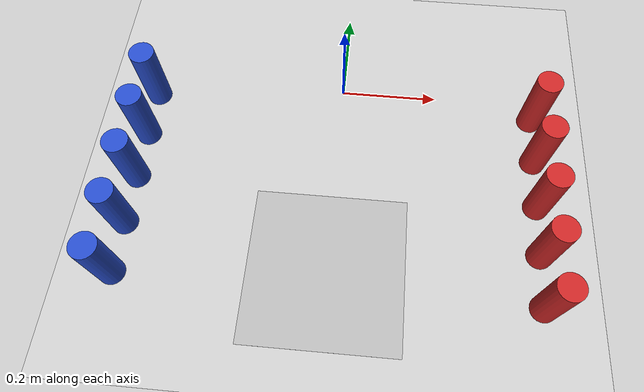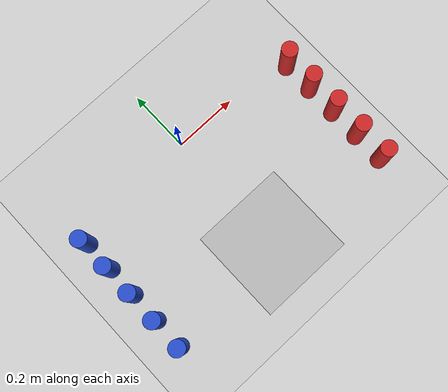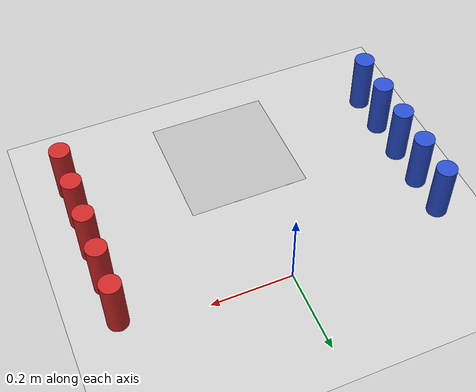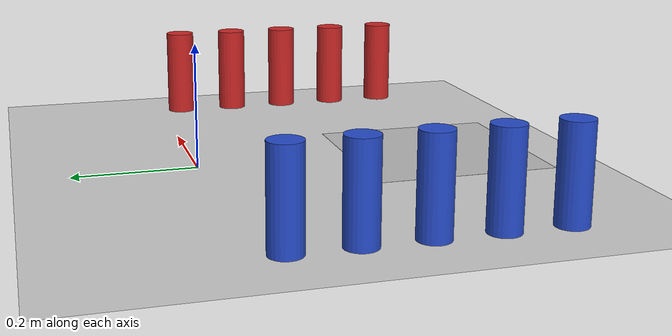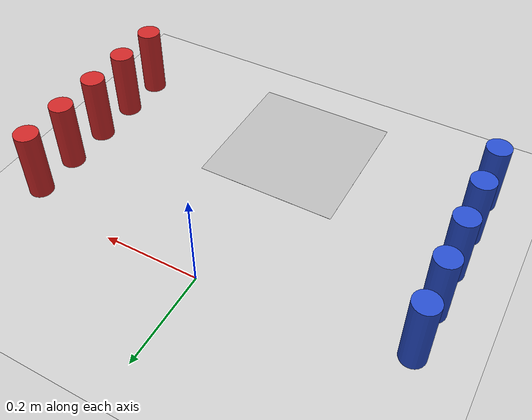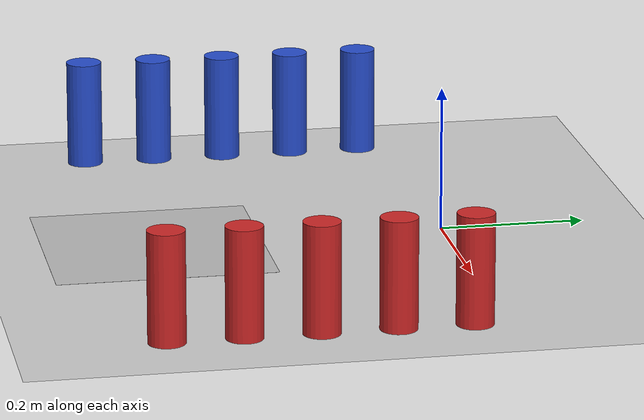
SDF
<sdf version="1.6">
 <world name="default">
  <model name="ground_plane">
   <static>1</static>
   <link name="link">
    <collision name="collision">
     <geometry><plane><normal>0 0 1</normal><size>100 100</size></plane></geometry>
     <surface>
      <contact><collide_bitmask>65535</collide_bitmask></contact>
      <friction><ode><mu>100</mu><mu2>50</mu2></ode></friction>
     </surface>
    </collision>
    <visual name="visual">
     <cast_shadows>0</cast_shadows>
     <geometry><plane><normal>0 0 1</normal><size>100 100</size></plane></geometry>
     <material>
      <script><uri>file://media/materials/scripts/gazebo.material</uri><name>Gazebo/Grey</name></script>
     </material>
    </visual>
   </link>
  </model>
  <light name="sun" type="directional">
   <pose>0 0 10 0 -0 0</pose>
   <diffuse>0.8 0.8 0.8 1</diffuse>
   <specular>0.2 0.2 0.2 1</specular>
   <attenuation>
    <range>1000</range>
    <constant>0.9</constant>
    <linear>0.01</linear>
    <quadratic>0.001</quadratic>
   </attenuation>
   <direction>-0.5 0.1 -0.9</direction>
  </light>
  <gravity>0 0 -9.8</gravity>
  <magnetic_field>6e-06 2.3e-05 -4.2e-05</magnetic_field>
  <atmosphere type="adiabatic"/>
  <physics name="default_physics" default="0" type="ode">
   <max_step_size>0.001</max_step_size>
   <real_time_factor>1</real_time_factor>
   <real_time_update_rate>1000</real_time_update_rate>
  </physics>
  <scene><ambient>0.4 0.4 0.4 1</ambient><background>0.7 0.7 0.7 1</background><shadows>1</shadows></scene>
  <spherical_coordinates>
   <surface_model>EARTH_WGS84</surface_model>
   <latitude_deg>0</latitude_deg>
   <longitude_deg>0</longitude_deg>
   <elevation>0</elevation>
   <heading_deg>0</heading_deg>
  </spherical_coordinates>
  <model name="blue_cylinder">
   <link name="blue_cylinder_link">
    <inertial>
     <mass>1</mass>
     <inertia><ixx>0.145833</ixx><ixy>0</ixy><ixz>0</ixz><iyy>0.145833</iyy><iyz>0</iyz><izz>0.125</izz></inertia>
    </inertial>
    <pose>0 0 0.075 0 -0 0</pose>
    <visual name="visual">
     <geometry><cylinder><radius>0.025</radius><length>0.15</length></cylinder></geometry>
     <material>
      <script><name>Gazebo/Blue</name><uri>file://media/materials/scripts/gazebo.material</uri></script>
      <shader type="pixel"><normal_map>__default__</normal_map></shader>
      <ambient>0.125 0.29 0.529 1</ambient>
      <diffuse>0.125 0.29 0.529 1</diffuse>
      <specular>0.125 0.29 0.529 1</specular>
      <emissive>0.125 0.29 0.529 1</emissive>
     </material>
    </visual>
    <collision name="collision">
     <geometry><cylinder><radius>0.025</radius><length>0.15</length></cylinder></geometry>
     <surface>
      <friction>
       <ode><mu>1</mu><mu2>1</mu2><fdir1>0 0 0</fdir1><slip1>0</slip1><slip2>0</slip2></ode>
       <torsional>
        <coefficient>1</coefficient>
        <patch_radius>0</patch_radius>
        <surface_radius>0</surface_radius>
        <use_patch_radius>1</use_patch_radius>
        <ode><slip>0</slip></ode>
       </torsional>
      </friction>
      <bounce><restitution_coefficient>0</restitution_coefficient><threshold>1e+06</threshold></bounce>
      <contact>
       <collide_without_contact>0</collide_without_contact>
       <collide_without_contact_bitmask>1</collide_without_contact_bitmask>
       <collide_bitmask>1</collide_bitmask>
       <ode>
        <soft_cfm>0</soft_cfm>
        <soft_erp>0.2</soft_erp>
        <kp>1e+13</kp>
        <kd>1</kd>
        <max_vel>0.01</max_vel>
        <min_depth>0</min_depth>
       </ode>
       <bullet>
        <split_impulse>1</split_impulse>
        <split_impulse_penetration_threshold>-0.01</split_impulse_penetration_threshold>
        <soft_cfm>0</soft_cfm>
        <soft_erp>0.2</soft_erp>
        <kp>1e+13</kp>
        <kd>1</kd>
       </bullet>
      </contact>
     </surface>
    </collision>
   </link>
   <static>0</static>
   <pose>-0.4 -0.04 -0 -1e-06 1e-06 -1.7e-05</pose>
  </model>
  <model name="red_cylinder">
   <link name="red_cylinder_link">
    <inertial>
     <mass>1</mass>
     <inertia><ixx>0.145833</ixx><ixy>0</ixy><ixz>0</ixz><iyy>0.145833</iyy><iyz>0</iyz><izz>0.125</izz></inertia>
    </inertial>
    <pose>0 0 0.075 0 -0 0</pose>
    <visual name="visual">
     <geometry><cylinder><radius>0.025</radius><length>0.15</length></cylinder></geometry>
     <material>
      <script><name>Gazebo/Red</name><uri>file://media/materials/scripts/gazebo.material</uri></script>
      <shader type="pixel"><normal_map>__default__</normal_map></shader>
      <ambient>0.8 0 0 1</ambient>
      <diffuse>0.8 0 0 1</diffuse>
      <specular>0.8 0 0 1</specular>
      <emissive>0.8 0 0 1</emissive>
     </material>
    </visual>
    <collision name="collision">
     <geometry><cylinder><radius>0.025</radius><length>0.15</length></cylinder></geometry>
     <surface>
      <friction>
       <ode><mu>1</mu><mu2>1</mu2><fdir1>0 0 0</fdir1><slip1>0</slip1><slip2>0</slip2></ode>
       <torsional>
        <coefficient>1</coefficient>
        <patch_radius>0</patch_radius>
        <surface_radius>0</surface_radius>
        <use_patch_radius>1</use_patch_radius>
        <ode><slip>0</slip></ode>
       </torsional>
      </friction>
      <bounce><restitution_coefficient>0</restitution_coefficient><threshold>1e+06</threshold></bounce>
      <contact>
       <collide_without_contact>0</collide_without_contact>
       <collide_without_contact_bitmask>1</collide_without_contact_bitmask>
       <collide_bitmask>1</collide_bitmask>
       <ode>
        <soft_cfm>0</soft_cfm>
        <soft_erp>0.2</soft_erp>
        <kp>1e+13</kp>
        <kd>1</kd>
        <max_vel>0.01</max_vel>
        <min_depth>0</min_depth>
       </ode>
       <bullet>
        <split_impulse>1</split_impulse>
        <split_impulse_penetration_threshold>-0.01</split_impulse_penetration_threshold>
        <soft_cfm>0</soft_cfm>
        <soft_erp>0.2</soft_erp>
        <kp>1e+13</kp>
        <kd>1</kd>
       </bullet>
      </contact>
     </surface>
    </collision>
   </link>
   <static>0</static>
   <pose>0.4 -0.04 -0 -1e-06 1e-06 -1.7e-05</pose>
  </model>
  <model name="blue_cylinder_clone">
   <link name="blue_cylinder_clone_link">
    <inertial>
     <mass>1</mass>
     <inertia><ixx>0.145833</ixx><ixy>0</ixy><ixz>0</ixz><iyy>0.145833</iyy><iyz>0</iyz><izz>0.125</izz></inertia>
    </inertial>
    <pose>0 0 0.075 0 -0 0</pose>
    <visual name="visual">
     <geometry><cylinder><radius>0.025</radius><length>0.15</length></cylinder></geometry>
     <material>
      <script><name>Gazebo/Blue</name><uri>file://media/materials/scripts/gazebo.material</uri></script>
      <shader type="pixel"><normal_map>__default__</normal_map></shader>
      <ambient>0.125 0.29 0.529 1</ambient>
      <diffuse>0.125 0.29 0.529 1</diffuse>
      <specular>0.125 0.29 0.529 1</specular>
      <emissive>0.125 0.29 0.529 1</emissive>
     </material>
    </visual>
    <collision name="collision">
     <geometry><cylinder><radius>0.025</radius><length>0.15</length></cylinder></geometry>
     <surface>
      <friction>
       <ode><mu>1</mu><mu2>1</mu2><fdir1>0 0 0</fdir1><slip1>0</slip1><slip2>0</slip2></ode>
       <torsional>
        <coefficient>1</coefficient>
        <patch_radius>0</patch_radius>
        <surface_radius>0</surface_radius>
        <use_patch_radius>1</use_patch_radius>
        <ode><slip>0</slip></ode>
       </torsional>
      </friction>
      <bounce><restitution_coefficient>0</restitution_coefficient><threshold>1e+06</threshold></bounce>
      <contact>
       <collide_without_contact>0</collide_without_contact>
       <collide_without_contact_bitmask>1</collide_without_contact_bitmask>
       <collide_bitmask>1</collide_bitmask>
       <ode>
        <soft_cfm>0</soft_cfm>
        <soft_erp>0.2</soft_erp>
        <kp>1e+13</kp>
        <kd>1</kd>
        <max_vel>0.01</max_vel>
        <min_depth>0</min_depth>
       </ode>
       <bullet>
        <split_impulse>1</split_impulse>
        <split_impulse_penetration_threshold>-0.01</split_impulse_penetration_threshold>
        <soft_cfm>0</soft_cfm>
        <soft_erp>0.2</soft_erp>
        <kp>1e+13</kp>
        <kd>1</kd>
       </bullet>
      </contact>
     </surface>
    </collision>
   </link>
   <static>0</static>
   <pose>-0.4 -0.14 -1e-06 -1e-06 1e-06 -2.5e-05</pose>
  </model>
  <model name="blue_cylinder_clone_clone">
   <link name="blue_cylinder_clone_clone_link">
    <inertial>
     <mass>1</mass>
     <inertia><ixx>0.145833</ixx><ixy>0</ixy><ixz>0</ixz><iyy>0.145833</iyy><iyz>0</iyz><izz>0.125</izz></inertia>
    </inertial>
    <pose>0 0 0.075 0 -0 0</pose>
    <visual name="visual">
     <geometry><cylinder><radius>0.025</radius><length>0.15</length></cylinder></geometry>
     <material>
      <script><name>Gazebo/Blue</name><uri>file://media/materials/scripts/gazebo.material</uri></script>
      <shader type="pixel"><normal_map>__default__</normal_map></shader>
      <ambient>0.125 0.29 0.529 1</ambient>
      <diffuse>0.125 0.29 0.529 1</diffuse>
      <specular>0.125 0.29 0.529 1</specular>
      <emissive>0.125 0.29 0.529 1</emissive>
     </material>
    </visual>
    <collision name="collision">
     <geometry><cylinder><radius>0.025</radius><length>0.15</length></cylinder></geometry>
     <surface>
      <friction>
       <ode><mu>1</mu><mu2>1</mu2><fdir1>0 0 0</fdir1><slip1>0</slip1><slip2>0</slip2></ode>
       <torsional>
        <coefficient>1</coefficient>
        <patch_radius>0</patch_radius>
        <surface_radius>0</surface_radius>
        <use_patch_radius>1</use_patch_radius>
        <ode><slip>0</slip></ode>
       </torsional>
      </friction>
      <bounce><restitution_coefficient>0</restitution_coefficient><threshold>1e+06</threshold></bounce>
      <contact>
       <collide_without_contact>0</collide_without_contact>
       <collide_without_contact_bitmask>1</collide_without_contact_bitmask>
       <collide_bitmask>1</collide_bitmask>
       <ode>
        <soft_cfm>0</soft_cfm>
        <soft_erp>0.2</soft_erp>
        <kp>1e+13</kp>
        <kd>1</kd>
        <max_vel>0.01</max_vel>
        <min_depth>0</min_depth>
       </ode>
       <bullet>
        <split_impulse>1</split_impulse>
        <split_impulse_penetration_threshold>-0.01</split_impulse_penetration_threshold>
        <soft_cfm>0</soft_cfm>
        <soft_erp>0.2</soft_erp>
        <kp>1e+13</kp>
        <kd>1</kd>
       </bullet>
      </contact>
     </surface>
    </collision>
   </link>
   <static>0</static>
   <pose>-0.4 -0.24 -0 -1e-06 1e-06 -1.3e-05</pose>
  </model>
  <model name="blue_cylinder_clone_clone_0">
   <link name="blue_cylinder_clone_clone_0_link">
    <inertial>
     <mass>1</mass>
     <inertia><ixx>0.145833</ixx><ixy>0</ixy><ixz>0</ixz><iyy>0.145833</iyy><iyz>0</iyz><izz>0.125</izz></inertia>
    </inertial>
    <pose>0 0 0.075 0 -0 0</pose>
    <visual name="visual">
     <geometry><cylinder><radius>0.025</radius><length>0.15</length></cylinder></geometry>
     <material>
      <script><name>Gazebo/Blue</name><uri>file://media/materials/scripts/gazebo.material</uri></script>
      <shader type="pixel"><normal_map>__default__</normal_map></shader>
      <ambient>0.125 0.29 0.529 1</ambient>
      <diffuse>0.125 0.29 0.529 1</diffuse>
      <specular>0.125 0.29 0.529 1</specular>
      <emissive>0.125 0.29 0.529 1</emissive>
     </material>
    </visual>
    <collision name="collision">
     <geometry><cylinder><radius>0.025</radius><length>0.15</length></cylinder></geometry>
     <surface>
      <friction>
       <ode><mu>1</mu><mu2>1</mu2><fdir1>0 0 0</fdir1><slip1>0</slip1><slip2>0</slip2></ode>
       <torsional>
        <coefficient>1</coefficient>
        <patch_radius>0</patch_radius>
        <surface_radius>0</surface_radius>
        <use_patch_radius>1</use_patch_radius>
        <ode><slip>0</slip></ode>
       </torsional>
      </friction>
      <bounce><restitution_coefficient>0</restitution_coefficient><threshold>1e+06</threshold></bounce>
      <contact>
       <collide_without_contact>0</collide_without_contact>
       <collide_without_contact_bitmask>1</collide_without_contact_bitmask>
       <collide_bitmask>1</collide_bitmask>
       <ode>
        <soft_cfm>0</soft_cfm>
        <soft_erp>0.2</soft_erp>
        <kp>1e+13</kp>
        <kd>1</kd>
        <max_vel>0.01</max_vel>
        <min_depth>0</min_depth>
       </ode>
       <bullet>
        <split_impulse>1</split_impulse>
        <split_impulse_penetration_threshold>-0.01</split_impulse_penetration_threshold>
        <soft_cfm>0</soft_cfm>
        <soft_erp>0.2</soft_erp>
        <kp>1e+13</kp>
        <kd>1</kd>
       </bullet>
      </contact>
     </surface>
    </collision>
   </link>
   <static>0</static>
   <pose>-0.4 -0.34 -1e-06 -1e-06 1e-06 -1e-05</pose>
  </model>
  <model name="blue_cylinder_clone_clone_1">
   <link name="blue_cylinder_clone_clone_1_link">
    <inertial>
     <mass>1</mass>
     <inertia><ixx>0.145833</ixx><ixy>0</ixy><ixz>0</ixz><iyy>0.145833</iyy><iyz>0</iyz><izz>0.125</izz></inertia>
    </inertial>
    <pose>0 0 0.075 0 -0 0</pose>
    <visual name="visual">
     <geometry><cylinder><radius>0.025</radius><length>0.15</length></cylinder></geometry>
     <material>
      <script><name>Gazebo/Blue</name><uri>file://media/materials/scripts/gazebo.material</uri></script>
      <shader type="pixel"><normal_map>__default__</normal_map></shader>
      <ambient>0.125 0.29 0.529 1</ambient>
      <diffuse>0.125 0.29 0.529 1</diffuse>
      <specular>0.125 0.29 0.529 1</specular>
      <emissive>0.125 0.29 0.529 1</emissive>
     </material>
    </visual>
    <collision name="collision">
     <geometry><cylinder><radius>0.025</radius><length>0.15</length></cylinder></geometry>
     <surface>
      <friction>
       <ode><mu>1</mu><mu2>1</mu2><fdir1>0 0 0</fdir1><slip1>0</slip1><slip2>0</slip2></ode>
       <torsional>
        <coefficient>1</coefficient>
        <patch_radius>0</patch_radius>
        <surface_radius>0</surface_radius>
        <use_patch_radius>1</use_patch_radius>
        <ode><slip>0</slip></ode>
       </torsional>
      </friction>
      <bounce><restitution_coefficient>0</restitution_coefficient><threshold>1e+06</threshold></bounce>
      <contact>
       <collide_without_contact>0</collide_without_contact>
       <collide_without_contact_bitmask>1</collide_without_contact_bitmask>
       <collide_bitmask>1</collide_bitmask>
       <ode>
        <soft_cfm>0</soft_cfm>
        <soft_erp>0.2</soft_erp>
        <kp>1e+13</kp>
        <kd>1</kd>
        <max_vel>0.01</max_vel>
        <min_depth>0</min_depth>
       </ode>
       <bullet>
        <split_impulse>1</split_impulse>
        <split_impulse_penetration_threshold>-0.01</split_impulse_penetration_threshold>
        <soft_cfm>0</soft_cfm>
        <soft_erp>0.2</soft_erp>
        <kp>1e+13</kp>
        <kd>1</kd>
       </bullet>
      </contact>
     </surface>
    </collision>
   </link>
   <static>0</static>
   <pose>-0.4 -0.44 -0 -1e-06 1e-06 -1.7e-05</pose>
  </model>
  <model name="red_cylinder_clone">
   <link name="red_cylinder_clone_link">
    <inertial>
     <mass>1</mass>
     <inertia><ixx>0.145833</ixx><ixy>0</ixy><ixz>0</ixz><iyy>0.145833</iyy><iyz>0</iyz><izz>0.125</izz></inertia>
    </inertial>
    <pose>0 0 0.075 0 -0 0</pose>
    <visual name="visual">
     <geometry><cylinder><radius>0.025</radius><length>0.15</length></cylinder></geometry>
     <material>
      <script><name>Gazebo/Red</name><uri>file://media/materials/scripts/gazebo.material</uri></script>
      <shader type="pixel"><normal_map>__default__</normal_map></shader>
      <ambient>0.8 0 0 1</ambient>
      <diffuse>0.8 0 0 1</diffuse>
      <specular>0.8 0 0 1</specular>
      <emissive>0.8 0 0 1</emissive>
     </material>
    </visual>
    <collision name="collision">
     <geometry><cylinder><radius>0.025</radius><length>0.15</length></cylinder></geometry>
     <surface>
      <friction>
       <ode><mu>1</mu><mu2>1</mu2><fdir1>0 0 0</fdir1><slip1>0</slip1><slip2>0</slip2></ode>
       <torsional>
        <coefficient>1</coefficient>
        <patch_radius>0</patch_radius>
        <surface_radius>0</surface_radius>
        <use_patch_radius>1</use_patch_radius>
        <ode><slip>0</slip></ode>
       </torsional>
      </friction>
      <bounce><restitution_coefficient>0</restitution_coefficient><threshold>1e+06</threshold></bounce>
      <contact>
       <collide_without_contact>0</collide_without_contact>
       <collide_without_contact_bitmask>1</collide_without_contact_bitmask>
       <collide_bitmask>1</collide_bitmask>
       <ode>
        <soft_cfm>0</soft_cfm>
        <soft_erp>0.2</soft_erp>
        <kp>1e+13</kp>
        <kd>1</kd>
        <max_vel>0.01</max_vel>
        <min_depth>0</min_depth>
       </ode>
       <bullet>
        <split_impulse>1</split_impulse>
        <split_impulse_penetration_threshold>-0.01</split_impulse_penetration_threshold>
        <soft_cfm>0</soft_cfm>
        <soft_erp>0.2</soft_erp>
        <kp>1e+13</kp>
        <kd>1</kd>
       </bullet>
      </contact>
     </surface>
    </collision>
   </link>
   <static>0</static>
   <pose>0.4 -0.14 -1e-06 -1e-06 1e-06 -2.5e-05</pose>
  </model>
  <model name="red_cylinder_clone_0">
   <link name="red_cylinder_clone_0_link">
    <inertial>
     <mass>1</mass>
     <inertia><ixx>0.145833</ixx><ixy>0</ixy><ixz>0</ixz><iyy>0.145833</iyy><iyz>0</iyz><izz>0.125</izz></inertia>
    </inertial>
    <pose>0 0 0.075 0 -0 0</pose>
    <visual name="visual">
     <geometry><cylinder><radius>0.025</radius><length>0.15</length></cylinder></geometry>
     <material>
      <script><name>Gazebo/Red</name><uri>file://media/materials/scripts/gazebo.material</uri></script>
      <shader type="pixel"><normal_map>__default__</normal_map></shader>
      <ambient>0.8 0 0 1</ambient>
      <diffuse>0.8 0 0 1</diffuse>
      <specular>0.8 0 0 1</specular>
      <emissive>0.8 0 0 1</emissive>
     </material>
    </visual>
    <collision name="collision">
     <geometry><cylinder><radius>0.025</radius><length>0.15</length></cylinder></geometry>
     <surface>
      <friction>
       <ode><mu>1</mu><mu2>1</mu2><fdir1>0 0 0</fdir1><slip1>0</slip1><slip2>0</slip2></ode>
       <torsional>
        <coefficient>1</coefficient>
        <patch_radius>0</patch_radius>
        <surface_radius>0</surface_radius>
        <use_patch_radius>1</use_patch_radius>
        <ode><slip>0</slip></ode>
       </torsional>
      </friction>
      <bounce><restitution_coefficient>0</restitution_coefficient><threshold>1e+06</threshold></bounce>
      <contact>
       <collide_without_contact>0</collide_without_contact>
       <collide_without_contact_bitmask>1</collide_without_contact_bitmask>
       <collide_bitmask>1</collide_bitmask>
       <ode>
        <soft_cfm>0</soft_cfm>
        <soft_erp>0.2</soft_erp>
        <kp>1e+13</kp>
        <kd>1</kd>
        <max_vel>0.01</max_vel>
        <min_depth>0</min_depth>
       </ode>
       <bullet>
        <split_impulse>1</split_impulse>
        <split_impulse_penetration_threshold>-0.01</split_impulse_penetration_threshold>
        <soft_cfm>0</soft_cfm>
        <soft_erp>0.2</soft_erp>
        <kp>1e+13</kp>
        <kd>1</kd>
       </bullet>
      </contact>
     </surface>
    </collision>
   </link>
   <static>0</static>
   <pose>0.4 -0.24 -0 -1e-06 1e-06 -1.3e-05</pose>
  </model>
  <model name="red_cylinder_clone_1">
   <link name="red_cylinder_clone_1_link">
    <inertial>
     <mass>1</mass>
     <inertia><ixx>0.145833</ixx><ixy>0</ixy><ixz>0</ixz><iyy>0.145833</iyy><iyz>0</iyz><izz>0.125</izz></inertia>
    </inertial>
    <pose>0 0 0.075 0 -0 0</pose>
    <visual name="visual">
     <geometry><cylinder><radius>0.025</radius><length>0.15</length></cylinder></geometry>
     <material>
      <script><name>Gazebo/Red</name><uri>file://media/materials/scripts/gazebo.material</uri></script>
      <shader type="pixel"><normal_map>__default__</normal_map></shader>
      <ambient>0.8 0 0 1</ambient>
      <diffuse>0.8 0 0 1</diffuse>
      <specular>0.8 0 0 1</specular>
      <emissive>0.8 0 0 1</emissive>
     </material>
    </visual>
    <collision name="collision">
     <geometry><cylinder><radius>0.025</radius><length>0.15</length></cylinder></geometry>
     <surface>
      <friction>
       <ode><mu>1</mu><mu2>1</mu2><fdir1>0 0 0</fdir1><slip1>0</slip1><slip2>0</slip2></ode>
       <torsional>
        <coefficient>1</coefficient>
        <patch_radius>0</patch_radius>
        <surface_radius>0</surface_radius>
        <use_patch_radius>1</use_patch_radius>
        <ode><slip>0</slip></ode>
       </torsional>
      </friction>
      <bounce><restitution_coefficient>0</restitution_coefficient><threshold>1e+06</threshold></bounce>
      <contact>
       <collide_without_contact>0</collide_without_contact>
       <collide_without_contact_bitmask>1</collide_without_contact_bitmask>
       <collide_bitmask>1</collide_bitmask>
       <ode>
        <soft_cfm>0</soft_cfm>
        <soft_erp>0.2</soft_erp>
        <kp>1e+13</kp>
        <kd>1</kd>
        <max_vel>0.01</max_vel>
        <min_depth>0</min_depth>
       </ode>
       <bullet>
        <split_impulse>1</split_impulse>
        <split_impulse_penetration_threshold>-0.01</split_impulse_penetration_threshold>
        <soft_cfm>0</soft_cfm>
        <soft_erp>0.2</soft_erp>
        <kp>1e+13</kp>
        <kd>1</kd>
       </bullet>
      </contact>
     </surface>
    </collision>
   </link>
   <static>0</static>
   <pose>0.4 -0.34 -1e-06 -1e-06 1e-06 -1e-05</pose>
  </model>
  <model name="red_cylinder_clone_1_clone">
   <link name="red_cylinder_clone_1_clone_link">
    <inertial>
     <mass>1</mass>
     <inertia><ixx>0.145833</ixx><ixy>0</ixy><ixz>0</ixz><iyy>0.145833</iyy><iyz>0</iyz><izz>0.125</izz></inertia>
    </inertial>
    <pose>0 0 0.075 0 -0 0</pose>
    <visual name="visual">
     <geometry><cylinder><radius>0.025</radius><length>0.15</length></cylinder></geometry>
     <material>
      <script><name>Gazebo/Red</name><uri>file://media/materials/scripts/gazebo.material</uri></script>
      <shader type="pixel"><normal_map>__default__</normal_map></shader>
      <ambient>0.8 0 0 1</ambient>
      <diffuse>0.8 0 0 1</diffuse>
      <specular>0.8 0 0 1</specular>
      <emissive>0.8 0 0 1</emissive>
     </material>
    </visual>
    <collision name="collision">
     <geometry><cylinder><radius>0.025</radius><length>0.15</length></cylinder></geometry>
     <surface>
      <friction>
       <ode><mu>1</mu><mu2>1</mu2><fdir1>0 0 0</fdir1><slip1>0</slip1><slip2>0</slip2></ode>
       <torsional>
        <coefficient>1</coefficient>
        <patch_radius>0</patch_radius>
        <surface_radius>0</surface_radius>
        <use_patch_radius>1</use_patch_radius>
        <ode><slip>0</slip></ode>
       </torsional>
      </friction>
      <bounce><restitution_coefficient>0</restitution_coefficient><threshold>1e+06</threshold></bounce>
      <contact>
       <collide_without_contact>0</collide_without_contact>
       <collide_without_contact_bitmask>1</collide_without_contact_bitmask>
       <collide_bitmask>1</collide_bitmask>
       <ode>
        <soft_cfm>0</soft_cfm>
        <soft_erp>0.2</soft_erp>
        <kp>1e+13</kp>
        <kd>1</kd>
        <max_vel>0.01</max_vel>
        <min_depth>0</min_depth>
       </ode>
       <bullet>
        <split_impulse>1</split_impulse>
        <split_impulse_penetration_threshold>-0.01</split_impulse_penetration_threshold>
        <soft_cfm>0</soft_cfm>
        <soft_erp>0.2</soft_erp>
        <kp>1e+13</kp>
        <kd>1</kd>
       </bullet>
      </contact>
     </surface>
    </collision>
   </link>
   <static>0</static>
   <pose>0.4 -0.44 -0 -1e-06 1e-06 -1.7e-05</pose>
  </model>
  <model name="tic_tac_toe_board">
   <link name="link">
    <inertial>
     <mass>1</mass>
     <inertia>
      <ixx>0.166667</ixx>
      <ixy>0</ixy>
      <ixz>0</ixz>
      <iyy>0.166667</iyy>
      <iyz>0</iyz>
      <izz>0.166667</izz>
     </inertia>
     <pose>0 0 5e-05 0 -0 0</pose>
    </inertial>
    <visual name="visual">
     <geometry><box><size>0.3 0.3 0.0001</size></box></geometry>
     <material>
      <script>
       <uri>model://tic_tac_toe_board/materials/scripts</uri>
       <uri>model://tic_tac_toe_board/materials/textures</uri>
       <name>TexturedShape/Grid33</name>
      </script>
     </material>
    </visual>
    <collision name="collision">
     <geometry><box><size>0.3 0.3 0.0003</size></box></geometry>
     <surface>
      <friction>
       <ode><mu>1</mu><mu2>1</mu2><fdir1>0 0 0</fdir1><slip1>0</slip1><slip2>0</slip2></ode>
       <torsional>
        <coefficient>1</coefficient>
        <patch_radius>0</patch_radius>
        <surface_radius>0</surface_radius>
        <use_patch_radius>1</use_patch_radius>
        <ode><slip>0</slip></ode>
       </torsional>
      </friction>
      <bounce><restitution_coefficient>0</restitution_coefficient><threshold>1e+06</threshold></bounce>
      <contact>
       <collide_without_contact>0</collide_without_contact>
       <collide_without_contact_bitmask>1</collide_without_contact_bitmask>
       <collide_bitmask>1</collide_bitmask>
       <ode>
        <soft_cfm>0</soft_cfm>
        <soft_erp>0.2</soft_erp>
        <kp>1e+13</kp>
        <kd>1</kd>
        <max_vel>0.01</max_vel>
        <min_depth>0</min_depth>
       </ode>
       <bullet>
        <split_impulse>1</split_impulse>
        <split_impulse_penetration_threshold>-0.01</split_impulse_penetration_threshold>
        <soft_cfm>0</soft_cfm>
        <soft_erp>0.2</soft_erp>
        <kp>1e+13</kp>
        <kd>1</kd>
       </bullet>
      </contact>
     </surface>
    </collision>
   </link>
   <static>0</static>
   <pose>-0.00235 -0.400333 0.00015 0 -0 0</pose>
  </model>
 </world>
</sdf>
